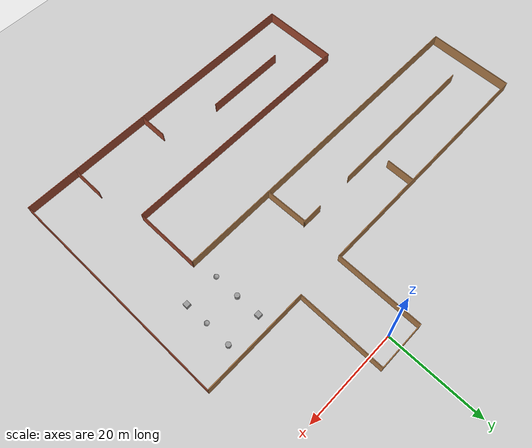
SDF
<sdf version="1.7">
 <world name="default">
  <light name="sun" type="directional">
   <pose>0 0 10 0 -0 0</pose>
   <diffuse>0.8 0.8 0.8 1</diffuse>
   <specular>0.2 0.2 0.2 1</specular>
   <attenuation>
    <range>1000</range>
    <constant>0.9</constant>
    <linear>0.01</linear>
    <quadratic>0.001</quadratic>
   </attenuation>
   <direction>-0.5 0.1 -0.9</direction>
   <spot><inner_angle>0</inner_angle><outer_angle>0</outer_angle><falloff>0</falloff></spot>
  </light>
  <model name="ground_plane">
   <static>1</static>
   <link name="link">
    <collision name="collision">
     <geometry><plane><normal>0 0 1</normal><size>100 100</size></plane></geometry>
     <surface><friction><ode><mu>100</mu><mu2>50</mu2></ode></friction></surface>
    </collision>
    <visual name="visual">
     <cast_shadows>0</cast_shadows>
     <geometry><plane><normal>0 0 1</normal><size>100 100</size></plane></geometry>
     <material>
      <script><uri>file://media/materials/scripts/gazebo.material</uri><name>Gazebo/Grey</name></script>
     </material>
    </visual>
   </link>
  </model>
  <gravity>0 0 -9.8</gravity>
  <magnetic_field>6e-06 2.3e-05 -4.2e-05</magnetic_field>
  <atmosphere type="adiabatic"/>
  <physics type="ode">
   <max_step_size>0.001</max_step_size>
   <real_time_factor>1</real_time_factor>
   <real_time_update_rate>1000</real_time_update_rate>
  </physics>
  <scene><ambient>0.4 0.4 0.4 1</ambient><background>0.7 0.7 0.7 1</background><shadows>1</shadows></scene>
  <spherical_coordinates>
   <surface_model>EARTH_WGS84</surface_model>
   <latitude_deg>0</latitude_deg>
   <longitude_deg>0</longitude_deg>
   <elevation>0</elevation>
   <heading_deg>0</heading_deg>
  </spherical_coordinates>
  <model name="target_follow_maze">
   <pose>-14.6562 -30.3316 0 0 -0 0</pose>
   <link name="Wall_10">
    <collision name="Wall_10_Collision">
     <geometry><box><size>52 0.15 2.5</size></box></geometry>
     <pose>0 0 1.25 0 -0 0</pose>
    </collision>
    <visual name="Wall_10_Visual">
     <pose>0 0 1.25 0 -0 0</pose>
     <geometry><box><size>52 0.15 2.5</size></box></geometry>
     <material>
      <script><uri>file://media/materials/scripts/gazebo.material</uri><name>Gazebo/Bricks</name></script>
      <ambient>1 1 1 1</ambient>
     </material>
     <meta><layer>0</layer></meta>
    </visual>
    <pose>3.00003 -16.875 0 0 -0 0</pose>
   </link>
   <link name="Wall_11">
    <collision name="Wall_11_Collision">
     <geometry><box><size>13.75 0.15 2.5</size></box></geometry>
     <pose>0 0 1.25 0 -0 0</pose>
    </collision>
    <visual name="Wall_11_Visual">
     <pose>0 0 1.25 0 -0 0</pose>
     <geometry><box><size>13.75 0.15 2.5</size></box></geometry>
     <material>
      <script><uri>file://media/materials/scripts/gazebo.material</uri><name>Gazebo/Bricks</name></script>
      <ambient>1 1 1 1</ambient>
     </material>
     <meta><layer>0</layer></meta>
    </visual>
    <pose>28.925 -10.075 0 0 -0 1.5708</pose>
   </link>
   <link name="Wall_12">
    <collision name="Wall_12_Collision">
     <geometry><box><size>71.5 0.15 2.5</size></box></geometry>
     <pose>0 0 1.25 0 -0 0</pose>
    </collision>
    <visual name="Wall_12_Visual">
     <pose>0 0 1.25 0 -0 0</pose>
     <geometry><box><size>71.5 0.15 2.5</size></box></geometry>
     <material>
      <script><uri>file://media/materials/scripts/gazebo.material</uri><name>Gazebo/Wood</name></script>
      <ambient>1 1 1 1</ambient>
     </material>
     <meta><layer>0</layer></meta>
    </visual>
    <pose>-6.74997 -3.275 0 0 -0 3.14159</pose>
   </link>
   <link name="Wall_13">
    <collision name="Wall_13_Collision">
     <geometry><box><size>18.25 0.15 2.5</size></box></geometry>
     <pose>0 0 1.25 0 -0 0</pose>
    </collision>
    <visual name="Wall_13_Visual">
     <pose>0 0 1.25 0 -0 0</pose>
     <geometry><box><size>18.25 0.15 2.5</size></box></geometry>
     <material>
      <script><uri>file://media/materials/scripts/gazebo.material</uri><name>Gazebo/Wood</name></script>
      <ambient>1 1 1 1</ambient>
     </material>
     <meta><layer>0</layer></meta>
    </visual>
    <pose>-42.425 5.775 0 0 -0 1.5708</pose>
   </link>
   <link name="Wall_14">
    <collision name="Wall_14_Collision">
     <geometry><box><size>52.55 0.15 2.5</size></box></geometry>
     <pose>0 0 1.25 0 -0 0</pose>
    </collision>
    <visual name="Wall_14_Visual">
     <pose>0 0 1.25 0 -0 0</pose>
     <geometry><box><size>52.55 0.15 2.5</size></box></geometry>
     <material>
      <script><uri>file://media/materials/scripts/gazebo.material</uri><name>Gazebo/Wood</name></script>
      <ambient>1 1 1 1</ambient>
     </material>
     <meta><layer>0</layer></meta>
    </visual>
    <pose>-16.225 14.85 0 0 -0 0.000954</pose>
   </link>
   <link name="Wall_15">
    <collision name="Wall_15_Collision">
     <geometry><box><size>18.5 0.15 2.5</size></box></geometry>
     <pose>0 0 1.25 0 -0 0</pose>
    </collision>
    <visual name="Wall_15_Visual">
     <pose>0 0 1.25 0 -0 0</pose>
     <geometry><box><size>18.5 0.15 2.5</size></box></geometry>
     <material>
      <script><uri>file://media/materials/scripts/gazebo.material</uri><name>Gazebo/Wood</name></script>
      <ambient>1 1 1 1</ambient>
     </material>
     <meta><layer>0</layer></meta>
    </visual>
    <pose>9.97503 24.05 0 0 -0 1.5708</pose>
   </link>
   <link name="Wall_17">
    <collision name="Wall_17_Collision">
     <geometry><box><size>33.25 0.15 2.5</size></box></geometry>
     <pose>0 0 1.25 0 -0 0</pose>
    </collision>
    <visual name="Wall_17_Visual">
     <pose>0 0 1.25 0 -0 0</pose>
     <geometry><box><size>33.25 0.15 2.5</size></box></geometry>
     <material>
      <script><uri>file://media/materials/scripts/gazebo.material</uri><name>Gazebo/Wood</name></script>
      <ambient>1 1 1 1</ambient>
     </material>
     <meta><layer>0</layer></meta>
    </visual>
    <pose>-20.0152 5.55049 0 0 -0 0</pose>
   </link>
   <link name="Wall_19">
    <collision name="Wall_19_Collision">
     <geometry><box><size>6 0.15 2.5</size></box></geometry>
     <pose>0 0 1.25 0 -0 0</pose>
    </collision>
    <visual name="Wall_19_Visual">
     <pose>0 0 1.25 0 -0 0</pose>
     <geometry><box><size>6 0.15 2.5</size></box></geometry>
     <material>
      <script><uri>file://media/materials/scripts/gazebo.material</uri><name>Gazebo/Bricks</name></script>
      <ambient>1 1 1 1</ambient>
     </material>
     <meta><layer>0</layer></meta>
    </visual>
    <pose>14.4599 -30.1822 0 0 -0 1.5708</pose>
   </link>
   <link name="Wall_21">
    <collision name="Wall_21_Collision">
     <geometry><box><size>9.22478 0.15 2.5</size></box></geometry>
     <pose>0 0 1.25 0 -0 0</pose>
    </collision>
    <visual name="Wall_21_Visual">
     <pose>0 0 1.25 0 -0 0</pose>
     <geometry><box><size>9.22478 0.15 2.5</size></box></geometry>
     <material>
      <script><uri>file://media/materials/scripts/gazebo.material</uri><name>Gazebo/Wood</name></script>
      <ambient>1 1 1 1</ambient>
     </material>
     <meta><layer>0</layer></meta>
    </visual>
    <pose>9.25655 1.30297 0 0 -0 1.58819</pose>
   </link>
   <link name="Wall_22">
    <collision name="Wall_22_Collision">
     <geometry><box><size>4.5 0.15 2.5</size></box></geometry>
     <pose>0 0 1.25 0 -0 0</pose>
    </collision>
    <visual name="Wall_22_Visual">
     <pose>0 0 1.25 0 -0 0</pose>
     <geometry><box><size>4.5 0.15 2.5</size></box></geometry>
     <material>
      <script><uri>file://media/materials/scripts/gazebo.material</uri><name>Gazebo/Wood</name></script>
      <ambient>1 1 1 1</ambient>
     </material>
     <meta><layer>0</layer></meta>
    </visual>
    <pose>7.16045 5.83967 0 0 -0 3.14159</pose>
   </link>
   <link name="Wall_24">
    <collision name="Wall_24_Collision">
     <geometry><box><size>17.5 0.15 2.5</size></box></geometry>
     <pose>0 0 1.25 0 -0 0</pose>
    </collision>
    <visual name="Wall_24_Visual">
     <pose>0 0 1.25 0 -0 0</pose>
     <geometry><box><size>17.5 0.15 2.5</size></box></geometry>
     <material>
      <script><uri>file://media/materials/scripts/gazebo.material</uri><name>Gazebo/Bricks</name></script>
      <ambient>1 1 1 1</ambient>
     </material>
     <meta><layer>0</layer></meta>
    </visual>
    <pose>-6.33091 -24.8005 0 0 -0 0</pose>
   </link>
   <link name="Wall_26">
    <collision name="Wall_26_Collision">
     <geometry><box><size>7 0.15 2.5</size></box></geometry>
     <pose>0 0 1.25 0 -0 0</pose>
    </collision>
    <visual name="Wall_26_Visual">
     <pose>0 0 1.25 0 -0 0</pose>
     <geometry><box><size>7 0.15 2.5</size></box></geometry>
     <material>
      <script><uri>file://media/materials/scripts/gazebo.material</uri><name>Gazebo/Bricks</name></script>
      <ambient>1 1 1 1</ambient>
     </material>
     <meta><layer>0</layer></meta>
    </visual>
    <pose>31.3508 -29.728 0 0 -0 1.5708</pose>
   </link>
   <link name="Wall_28">
    <collision name="Wall_28_Collision">
     <geometry><box><size>6 0.15 2.5</size></box></geometry>
     <pose>0 0 1.25 0 -0 0</pose>
    </collision>
    <visual name="Wall_28_Visual">
     <pose>0 0 1.25 0 -0 0</pose>
     <geometry><box><size>6 0.15 2.5</size></box></geometry>
     <material>
      <script><uri>file://media/materials/scripts/gazebo.material</uri><name>Gazebo/Wood</name></script>
      <ambient>1 1 1 1</ambient>
     </material>
     <meta><layer>0</layer></meta>
    </visual>
    <pose>-11.3495 11.8258 0 0 -0 -1.5708</pose>
   </link>
   <link name="Wall_4">
    <collision name="Wall_4_Collision">
     <geometry><box><size>10.25 0.15 2.5</size></box></geometry>
     <pose>0 0 1.25 0 -0 0</pose>
    </collision>
    <visual name="Wall_4_Visual">
     <pose>0 0 1.25 0 -0 0</pose>
     <geometry><box><size>10.25 0.15 2.5</size></box></geometry>
     <material>
      <script><uri>file://media/materials/scripts/gazebo.material</uri><name>Gazebo/Wood</name></script>
      <ambient>1 1 1 1</ambient>
     </material>
     <meta><layer>0</layer></meta>
    </visual>
    <pose>15.025 33.225 0 0 -0 0</pose>
   </link>
   <link name="Wall_5">
    <collision name="Wall_5_Collision">
     <geometry><box><size>18.5 0.15 2.5</size></box></geometry>
     <pose>0 0 1.25 0 -0 0</pose>
    </collision>
    <visual name="Wall_5_Visual">
     <pose>0 0 1.25 0 -0 0</pose>
     <geometry><box><size>18.5 0.15 2.5</size></box></geometry>
     <material>
      <script><uri>file://media/materials/scripts/gazebo.material</uri><name>Gazebo/Wood</name></script>
      <ambient>1 1 1 1</ambient>
     </material>
     <meta><layer>0</layer></meta>
    </visual>
    <pose>20.075 24.05 0 0 -0 -1.5708</pose>
   </link>
   <link name="Wall_6">
    <collision name="Wall_6_Collision">
     <geometry><box><size>22.5 0.15 2.5</size></box></geometry>
     <pose>0 0 1.25 0 -0 0</pose>
    </collision>
    <visual name="Wall_6_Visual">
     <pose>0 0 1.25 0 -0 0</pose>
     <geometry><box><size>22.5 0.15 2.5</size></box></geometry>
     <material>
      <script><uri>file://media/materials/scripts/gazebo.material</uri><name>Gazebo/Wood</name></script>
      <ambient>1 1 1 1</ambient>
     </material>
     <meta><layer>0</layer></meta>
    </visual>
    <pose>31.25 14.875 0 0 -0 0</pose>
   </link>
   <link name="Wall_7">
    <collision name="Wall_7_Collision">
     <geometry><box><size>48.25 0.15 2.5</size></box></geometry>
     <pose>0 0 1.25 0 -0 0</pose>
    </collision>
    <visual name="Wall_7_Visual">
     <pose>0 0 1.25 0 -0 0</pose>
     <geometry><box><size>48.25 0.15 2.5</size></box></geometry>
     <material>
      <script><uri>file://media/materials/scripts/gazebo.material</uri><name>Gazebo/Bricks</name></script>
      <ambient>1 1 1 1</ambient>
     </material>
     <meta><layer>0</layer></meta>
    </visual>
    <pose>42.425 -9.175 0 0 -0 -1.5708</pose>
   </link>
   <link name="Wall_8">
    <collision name="Wall_8_Collision">
     <geometry><box><size>65.5 0.15 2.5</size></box></geometry>
     <pose>0 0 1.25 0 -0 0</pose>
    </collision>
    <visual name="Wall_8_Visual">
     <pose>0 0 1.25 0 -0 0</pose>
     <geometry><box><size>65.5 0.15 2.5</size></box></geometry>
     <material>
      <script><uri>file://media/materials/scripts/gazebo.material</uri><name>Gazebo/Bricks</name></script>
      <ambient>1 1 1 1</ambient>
     </material>
     <meta><layer>0</layer></meta>
    </visual>
    <pose>9.75003 -33.225 0 0 -0 3.14159</pose>
   </link>
   <link name="Wall_9">
    <collision name="Wall_9_Collision">
     <geometry><box><size>16.5 0.15 2.5</size></box></geometry>
     <pose>0 0 1.25 0 -0 0</pose>
    </collision>
    <visual name="Wall_9_Visual">
     <pose>0 0 1.25 0 -0 0</pose>
     <geometry><box><size>16.5 0.15 2.5</size></box></geometry>
     <material>
      <script><uri>file://media/materials/scripts/gazebo.material</uri><name>Gazebo/Bricks</name></script>
      <ambient>1 1 1 1</ambient>
     </material>
     <meta><layer>0</layer></meta>
    </visual>
    <pose>-22.925 -25.05 0 0 -0 1.5708</pose>
   </link>
   <static>1</static>
  </model>
  <model name="unit_box">
   <pose>12.7383 -18.7407 0.499995 -1e-05 -0 -0</pose>
   <link name="link">
    <inertial>
     <mass>1</mass>
     <inertia>
      <ixx>0.166667</ixx>
      <ixy>0</ixy>
      <ixz>0</ixz>
      <iyy>0.166667</iyy>
      <iyz>0</iyz>
      <izz>0.166667</izz>
     </inertia>
    </inertial>
    <collision name="collision"><geometry><box><size>1 1 1</size></box></geometry></collision>
    <visual name="visual">
     <geometry><box><size>1 1 1</size></box></geometry>
     <material>
      <script><name>Gazebo/Grey</name><uri>file://media/materials/scripts/gazebo.material</uri></script>
     </material>
    </visual>
   </link>
  </model>
  <model name="unit_cylinder">
   <pose>12.8343 -23.8409 0.499992 -3e-06 -4e-06 -0</pose>
   <link name="link">
    <inertial>
     <mass>1</mass>
     <inertia><ixx>0.145833</ixx><ixy>0</ixy><ixz>0</ixz><iyy>0.145833</iyy><iyz>0</iyz><izz>0.125</izz></inertia>
    </inertial>
    <collision name="collision">
     <geometry><cylinder><radius>0.5</radius><length>1</length></cylinder></geometry>
    </collision>
    <visual name="visual">
     <geometry><cylinder><radius>0.5</radius><length>1</length></cylinder></geometry>
     <material>
      <script><name>Gazebo/Grey</name><uri>file://media/materials/scripts/gazebo.material</uri></script>
     </material>
    </visual>
   </link>
  </model>
  <model name="unit_sphere">
   <pose>12.8482 -29.1409 0.5 0 -0 0</pose>
   <link name="link">
    <inertial>
     <mass>1</mass>
     <inertia><ixx>0.1</ixx><ixy>0</ixy><ixz>0</ixz><iyy>0.1</iyy><iyz>0</iyz><izz>0.1</izz></inertia>
    </inertial>
    <collision name="collision"><geometry><sphere><radius>0.5</radius></sphere></geometry></collision>
    <visual name="visual">
     <geometry><sphere><radius>0.5</radius></sphere></geometry>
     <material>
      <script><name>Gazebo/Grey</name><uri>file://media/materials/scripts/gazebo.material</uri></script>
     </material>
    </visual>
   </link>
  </model>
  <model name="unit_cylinder_0">
   <pose>20.0236 -18.7613 0.499997 3e-06 4e-06 -0</pose>
   <link name="link">
    <inertial>
     <mass>1</mass>
     <inertia><ixx>0.145833</ixx><ixy>0</ixy><ixz>0</ixz><iyy>0.145833</iyy><iyz>0</iyz><izz>0.125</izz></inertia>
    </inertial>
    <collision name="collision">
     <geometry><cylinder><radius>0.5</radius><length>1</length></cylinder></geometry>
    </collision>
    <visual name="visual">
     <geometry><cylinder><radius>0.5</radius><length>1</length></cylinder></geometry>
     <material>
      <script><name>Gazebo/Grey</name><uri>file://media/materials/scripts/gazebo.material</uri></script>
     </material>
    </visual>
   </link>
  </model>
  <model name="unit_sphere_0">
   <pose>19.9183 -24.2059 0.5 0 -0 0</pose>
   <link name="link">
    <inertial>
     <mass>1</mass>
     <inertia><ixx>0.1</ixx><ixy>0</ixy><ixz>0</ixz><iyy>0.1</iyy><iyz>0</iyz><izz>0.1</izz></inertia>
    </inertial>
    <collision name="collision"><geometry><sphere><radius>0.5</radius></sphere></geometry></collision>
    <visual name="visual">
     <geometry><sphere><radius>0.5</radius></sphere></geometry>
     <material>
      <script><name>Gazebo/Grey</name><uri>file://media/materials/scripts/gazebo.material</uri></script>
     </material>
    </visual>
   </link>
  </model>
  <model name="unit_box_0">
   <pose>20.0056 -29.0991 0.5 0 -0 0</pose>
   <link name="link">
    <inertial>
     <mass>1</mass>
     <inertia>
      <ixx>0.166667</ixx>
      <ixy>0</ixy>
      <ixz>0</ixz>
      <iyy>0.166667</iyy>
      <iyz>0</iyz>
      <izz>0.166667</izz>
     </inertia>
    </inertial>
    <collision name="collision"><geometry><box><size>1 1 1</size></box></geometry></collision>
    <visual name="visual">
     <geometry><box><size>1 1 1</size></box></geometry>
     <material>
      <script><name>Gazebo/Grey</name><uri>file://media/materials/scripts/gazebo.material</uri></script>
     </material>
    </visual>
   </link>
  </model>
 </world>
</sdf>
